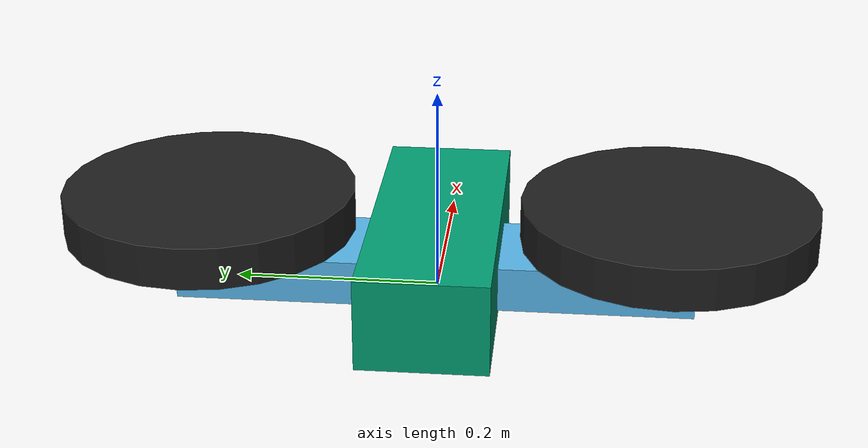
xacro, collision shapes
<?xml version="1.0"?>
<robot name="sq2_ccv" xmlns:xacro="http://ros.org/wiki/xacro">

    <xacro:include filename="$(find sq2_ccv_choreonoid)/xacro/base/base.urdf.xacro"/>
    <xacro:include filename="$(find sq2_ccv_choreonoid)/xacro/base/base2body.urdf.xacro"/>
    <xacro:include filename="$(find sq2_ccv_choreonoid)/xacro/steering/steering.urdf.xacro"/>
    <xacro:include filename="$(find sq2_ccv_choreonoid)/xacro/wheel/wheel.urdf.xacro"/>

    <link name="base_footprint"/>
    <!-- Base -->
    <xacro:base parent="base_footprint">
        <origin xyz="0 0 0"/>
    </xacro:base>
    <!--Base2Body-->
    <xacro:base2body parent="base_link">
        <origin xyz="0 0 -0.011"/>
    </xacro:base2body>
    <!-- Steering -->
    <xacro:steering prefix="right" parent="base_link">
        <origin xyz="0 -0.2245 0.048" rpy="0 0 0"/>
    </xacro:steering>
    <xacro:steering prefix="left" parent="base_link">
        <origin xyz="0 0.2245 0.048" rpy="0 0 0"/>
    </xacro:steering>
    <!-- Wheel -->
    <xacro:wheel prefix="right" parent="right_steering_link">
        <origin xyz="0 0 0.0275" rpy="0 0 0"/>
    </xacro:wheel>
    <xacro:wheel prefix="left" parent="left_steering_link">
        <origin xyz="0 0 0.0275" rpy="0 0 0"/>
    </xacro:wheel>

</robot>

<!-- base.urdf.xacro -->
<robot name="sq2_ccv" xmlns:xacro="http://ros.org/wiki/xacro">
    <xacro:include filename="$(find sq2_ccv_choreonoid)/xacro/common.xacro"/>

    <xacro:property name="base_length" value="0.105"/>
    <xacro:property name="base_width" value="0.501"/>
    <xacro:property name="base_height" value="0.044"/>
    <xacro:property name="base_mass" value="5.0"/>

    <xacro:macro name="base" params="parent *joint_origin">
        <joint name="base_link_joint" type="fixed">
            <xacro:insert_block name="joint_origin"/>
            <parent link="${parent}"/>
            <child link="base_link"/>
        </joint>

        <link name="base_link">
            <visual>
                <origin xyz="0.0 0.0 0.022" rpy="0 0 0"/>
                <geometry>
                    <mesh filename="package://sq2_ccv_choreonoid/meshes/base.stl" />
                </geometry>
            </visual>
            <collision>
                <origin xyz="0.0 0.0 0.022" rpy="0 0 0"/>
                <geometry>
                    <box size="${base_length} ${base_width} ${base_height}"/>
                </geometry>
            </collision>
            <inertial>
                <origin xyz="0.0 0.0 0.0" rpy="0 0 0"/>
                <xacro:box_inertial mass="${base_mass}" height="${base_height}" width="${base_width}" depth="${base_length}"/>
            </inertial>
        </link>
    </xacro:macro>

</robot>

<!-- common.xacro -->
<robot xmlns:xacro="http://ros.org/wiki/xacro">
    <xacro:property name="M_PI" value="3.14159274"/>

    <xacro:macro name="cylinder_inertial" params="mass radius length">
        <mass value="${mass}"/>
        <inertia ixx="${((radius*radius)/4 + (length*length)/12)*mass}" ixy="0" ixz="0"
            iyy="${((radius*radius)/4 + (length*length)/12)*mass}" iyz="0"
            izz="${(mass*radius*radius)/2}" />
    </xacro:macro>

    <xacro:macro name="box_inertial" params="mass height width depth">
        <mass value="${mass}"/>
        <inertia ixx="${(mass*(width*width+height*height))/12}" ixy="0" ixz="0"
        iyy="${(mass*(height*height+depth*depth))/12}" iyz="0"
        izz="${(mass*(depth*depth+width*width))/12}" />
    </xacro:macro>
</robot>

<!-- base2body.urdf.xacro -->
<robot xmlns:xacro="http://ros.org/wiki/xacro">

    <xacro:include filename="$(find sq2_ccv_choreonoid)/xacro/common.xacro"/>

    <xacro:property name="base2body_length" value="0.319"/>
    <xacro:property name="base2body_width" value="0.125"/>
    <xacro:property name="base2body_height" value="0.090"/>
    <xacro:property name="base2body_mass" value="5.0"/>

    <xacro:macro name="base2body" params="parent *joint_origin">
        <joint name="base2body_link_joint" type="fixed">
            <xacro:insert_block name="joint_origin"/>
            <parent link="${parent}"/>
            <child link="base2body_link"/>
        </joint>

        <link name="base2body_link">
            <visual>
                <origin xyz="0.0 0.0 0.045" rpy="0 0 0"/>
                <geometry>
                <box size="${base2body_length} ${base2body_width} ${base2body_height}"/>
                </geometry>
            </visual>
            <collision>
                <origin xyz="0.0 0.0 0.045" rpy="0 0 0"/>
                <geometry>
                <box size="${base2body_length} ${base2body_width} ${base2body_height}"/>
                </geometry>
            </collision>
            <inertial>
                <origin xyz="0.0 0.0 0.0" rpy="0 0 0"/>
                <xacro:box_inertial mass="${base2body_mass}" depth="${base2body_length}" width="${base2body_width}" height="${base2body_height}"/>
            </inertial>
        </link>
    </xacro:macro>
</robot>

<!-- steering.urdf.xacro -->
<robot xmlns:xacro="http://ros.org/wiki/xacro">

    <xacro:include filename="$(find sq2_ccv_choreonoid)/xacro/common.xacro"/>

    <xacro:property name="steering_radius" value="0.01675"/>
    <xacro:property name="steering_width" value="0.003"/>
    <xacro:property name="steering_mass" value="1.0"/>

    <xacro:macro name="steering" params="prefix parent *joint_origin">
        <joint name="${prefix}_steering_joint" type="revolute">
            <xacro:insert_block name="joint_origin"/>
            <parent link="${parent}"/>
            <child link="${prefix}_steering_link"/>
            <axis xyz="0 0 1"/>
            <limit velocity="6.28" effort="11" lower="${-M_PI/6}" upper="${M_PI/6}"/>
        </joint>

        <link name="${prefix}_steering_link">
            <visual>
                <material name="black"/>
                    <color rgba="0.5 0.5 0.5 1"/>
                <origin xyz="0 0 ${steering_width/2}" rpy="0 0 0"/>
                <geometry>
                    <mesh filename="package://sq2_ccv_choreonoid/meshes/${prefix}_drive_motor.stl" />
                </geometry>
            </visual>
            <collision>
                <origin xyz="0 0 ${steering_width/2}" rpy="0 0 0"/>
                <geometry>
                    <cylinder radius="${steering_radius}" length="${steering_width}"/>
                </geometry>
            </collision>
            <inertial>
                <origin xyz="0 0 ${steering_width/2}" rpy="0 0 0"/>
                <xacro:cylinder_inertial mass="${steering_mass}" radius="${steering_radius}" length="${steering_width}"/>
            </inertial>
        </link>
    </xacro:macro>
</robot>

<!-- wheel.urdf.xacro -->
<robot xmlns:xacro="http://ros.org/wiki/xacro">

    <xacro:include filename="$(find sq2_ccv_choreonoid)/xacro/common.xacro"/>

    <xacro:property name="wheel_radius" value="0.1435"/>
    <xacro:property name="wheel_width" value="0.0415"/>
    <xacro:property name="wheel_mass" value="5.0"/>

    <xacro:macro name="wheel" params="prefix parent *joint_origin">
        <joint name="${prefix}_wheel_joint" type="continuous">
            <xacro:insert_block name="joint_origin"/>
            <parent link="${parent}"/>
            <child link="${prefix}_wheel_link"/>
            <axis xyz="0 1 0"/>
        </joint>

        <link name="${prefix}_wheel_link">
            <visual>
                <origin xyz="0 0 0" rpy="0 0 0"/>
                <material name="black"/>
                <color rgba="0.2 0.2 0.2 1"/>
                <geometry>
                    <mesh filename="package://sq2_ccv_choreonoid/meshes/${prefix}_wheel.stl" />
                </geometry>
            </visual>
            <collision>
                <origin xyz="0 0 0" rpy="0 0 0"/>
                <geometry>
                    <cylinder radius="${wheel_radius}" length="${wheel_width}"/>
                </geometry>
            </collision>
            <inertial>
                <origin xyz="0 0 0" rpy="0 0 0"/>
                <xacro:cylinder_inertial mass="${wheel_mass}" radius="${wheel_radius}" length="${wheel_width}"/>
            </inertial>
        </link>

        <gazebo reference="${prefix}_wheel_link">
            <selfCollide>false</selfCollide>
            <mu1 value="0.8"/>
            <mu2 value="0.8"/>
        </gazebo>
    </xacro:macro>
</robot>
